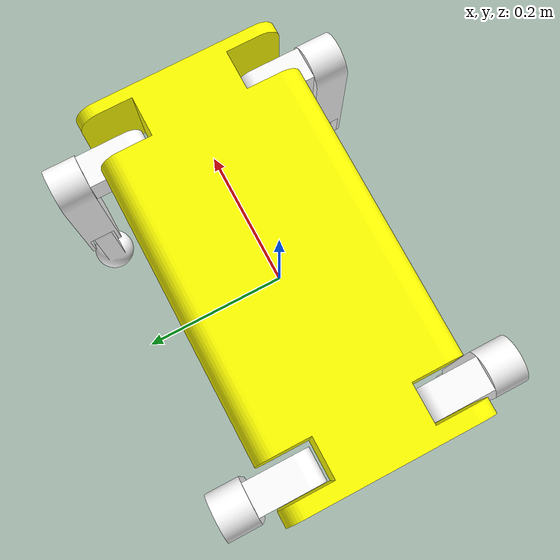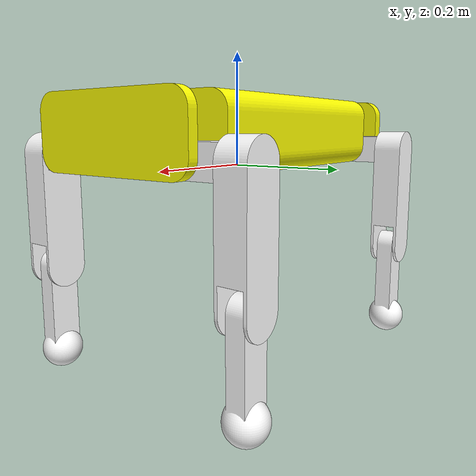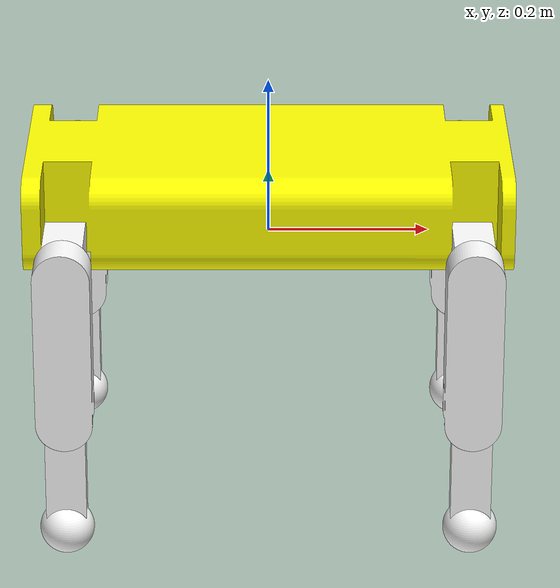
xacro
<?xml version="1.0" ?>
<robot name="simple_quad" xmlns:xacro="http://www.ros.org/wiki/xacro">
  <!-- include xacro files -->
  <xacro:include filename="$(find simple_quad_description)/urdf/simple_quad.ros2_control.xacro"/>
  <xacro:include filename="$(find simple_quad_description)/urdf/body/body.urdf.xacro"/>
  <xacro:include filename="$(find simple_quad_description)/urdf/leg/hip.urdf.xacro"/>
  <xacro:include filename="$(find simple_quad_description)/urdf/leg/upper_leg.urdf.xacro"/>
  <xacro:include filename="$(find simple_quad_description)/urdf/leg/lower_leg.urdf.xacro"/>
  <!-- xacro:include filename="$(find simple_quad_description)/urdf/sensors/lidar.urdf.xacro"/ -->

  <!-- arg -->
  <xacro:arg name="use_ignition" default="true"/>

  <!-- property -->
  <xacro:property name="use_ignition" value="$(arg use_ignition)"/>
  <xacro:property name="body_mass" value="148.6"/>
  <xacro:property name="hip_mass" value="1.857211"/>
  <xacro:property name="hip_shift_x" value="0.25"/>
  <xacro:property name="hip_shift_y" value="0.1"/>
  <xacro:property name="hip_shift_z" value="0.025"/>
  <xacro:property name="upper_leg_mass" value="2.895276"/>
  <xacro:property name="upper_leg_shift_y" value="0.1"/>
  <xacro:property name="lower_leg_mass" value="2.0"/>
  <xacro:property name="lower_leg_shift_z" value="-0.19"/>
  <xacro:property name="lidar_radius" value="0.04"/>
  <xacro:property name="lidar_length" value="0.04"/>
  <xacro:property name="lidar_mass" value="0.01"/>
  <xacro:property name="lidar_shift_x" value="0"/>
  <xacro:property name="lidar_shift_y" value="0"/>
  <xacro:property name="lidar_shift_z" value="0.14"/>

  <!-- ======== Body Description ======== -->
  <xacro:body name="base_link" mass="${body_mass}"/>

  <!-- ======== Leg Description ======== -->
  <xacro:hip name="lf" parent="base_link" mass="${hip_mass}" side="1" use_ignition="${use_ignition}">
    <origin xyz="${hip_shift_x} ${hip_shift_y} ${hip_shift_z}" rpy="0 0 0" use_ignition="${use_ignition}"/>
  </xacro:hip>
  <xacro:hip name="rf" parent="base_link" mass="${hip_mass}" side="-1" use_ignition="${use_ignition}">
    <origin xyz="${hip_shift_x} ${-hip_shift_y} ${hip_shift_z}" rpy="0 0 0"/>
  </xacro:hip>
  <xacro:hip name="lb" parent="base_link" mass="${hip_mass}" side="1" use_ignition="${use_ignition}">
    <origin xyz="${-hip_shift_x} ${hip_shift_y} ${hip_shift_z}" rpy="0 0 0"/>
  </xacro:hip>
  <xacro:hip name="rb" parent="base_link" mass="${hip_mass}" side="-1" use_ignition="${use_ignition}">
    <origin xyz="${-hip_shift_x} ${-hip_shift_y} ${hip_shift_z}" rpy="0 0 0"/>
  </xacro:hip>

  <xacro:upper_leg name="lf" mass="${upper_leg_mass}" use_ignition="${use_ignition}">
    <origin xyz="0 ${upper_leg_shift_y} 0" rpy="0 0 0"/>
  </xacro:upper_leg>
  <xacro:upper_leg name="rf" mass="${upper_leg_mass}" use_ignition="${use_ignition}">
    <origin xyz="0 ${-upper_leg_shift_y} 0" rpy="0 0 0"/>
  </xacro:upper_leg>
  <xacro:upper_leg name="lb" mass="${upper_leg_mass}" use_ignition="${use_ignition}">
    <origin xyz="0 ${upper_leg_shift_y} 0" rpy="0 0 0"/>
  </xacro:upper_leg>
  <xacro:upper_leg name="rb" mass="${upper_leg_mass}" use_ignition="${use_ignition}">
    <origin xyz="0 ${-upper_leg_shift_y} 0" rpy="0 0 0"/>
  </xacro:upper_leg>

  <xacro:lower_leg name="lf" mass="${lower_leg_mass}" use_ignition="${use_ignition}">
    <origin xyz="0 0 ${lower_leg_shift_z}" rpy="0 0 0"/>
  </xacro:lower_leg>
  <xacro:lower_leg name="rf" mass="${lower_leg_mass}" use_ignition="${use_ignition}">
    <origin xyz="0 0 ${lower_leg_shift_z}" rpy="0 0 0"/>
  </xacro:lower_leg>
  <xacro:lower_leg name="lb" mass="${lower_leg_mass}" use_ignition="${use_ignition}">
    <origin xyz="0 0 ${lower_leg_shift_z}" rpy="0 0 0"/>
  </xacro:lower_leg>
  <xacro:lower_leg name="rb" mass="${lower_leg_mass}" use_ignition="${use_ignition}">
    <origin xyz="0 0 ${lower_leg_shift_z}" rpy="0 0 0"/>
  </xacro:lower_leg>

  <!-- ======== Sensors Description ======== -->

  <!-- ======== ros2_control ======== -->
  <xacro:simple_quad_ros2_control use_ignition="${use_ignition}"/>
</robot>

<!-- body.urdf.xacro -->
<robot name="body" xmlns:xacro="http://www.ros.org/wiki/xacro">

  <xacro:macro name="body" params="name mass">

    <link name="${name}">
      <inertial>
        <origin xyz="0 0 0" rpy="0 0 0"/>
        <mass value="${mass}" />
        <inertia ixx="1.692"    ixy="0"     ixz="0.003286"
                 iyx="0"        iyy="4.596" iyz="0"
                 izx="0.003286" izy="0"     izz="4.871"/>
      </inertial>
      <visual>
        <origin xyz="0 0 0" rpy="0 0 0"/>
        <geometry>
          <mesh filename="file://$(find simple_quad_description)/meshes/body.stl" scale="0.001 0.001 0.001"/>
        </geometry>
        <material name="body_color">
          <color rgba="1.0 1.0 0.0 1.0"/>
        </material>
      </visual>
      <collision>
        <origin xyz="0 0 0" rpy="0 0 0"/>
        <geometry>
          <mesh filename="file://$(find simple_quad_description)/meshes/body.stl" scale="0.001 0.001 0.001"/>
        </geometry>
      </collision>
    </link>

    <gazebo reference="${name}">
      <material>Gazebo/Yellow</material>
    </gazebo>
  </xacro:macro>
</robot>

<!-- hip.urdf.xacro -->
<robot name="hip" xmlns:xacro="http://www.ros.org/wiki/xacro">
  <xacro:include filename="$(find simple_quad_description)/urdf/leg/hip.gazebo.xacro" />
  <xacro:include filename="$(find simple_quad_description)/urdf/leg/hip.ros2_control.xacro" />

  <xacro:macro name="hip_mesh">
    <xacro:if value="${side==1}">
      <mesh filename="file://$(find simple_quad_description)/meshes/left_hip.stl" scale="0.001 0.001 0.001"/>
    </xacro:if>
    <xacro:if value="${side==-1}">
      <mesh filename="file://$(find simple_quad_description)/meshes/right_hip.stl" scale="0.001 0.001 0.001"/>
    </xacro:if>
  </xacro:macro>

  <xacro:macro name="hip" params="name parent mass side *origin use_ignition">
    <material name="${name}_hip_color">
      <color rgba="1.0 1.0 1.0 1.0"/>
    </material>

    <link name="${name}_hip">
      <inertial>
        <origin xyz="0 0 0" rpy="0 0 0"/>
        <mass value="${mass}" />
        <inertia ixx="0.003187" ixy="0" ixz="0"
                 iyx="0" iyy="0.0007538" iyz="0"
                 izx="0" izy="0" izz="0.003207"/>
      </inertial>
      <visual>
        <origin xyz="0 0 0" rpy="0 0 0"/>
        <geometry>
          <xacro:hip_mesh/>
        </geometry>
        <material name="${name}_hip_color"/>
      </visual>
      <collision>
        <origin xyz="0 0 0" rpy="0 0 0"/>
        <geometry>
          <xacro:hip_mesh/>
        </geometry>
      </collision>
    </link>

    <joint name="${name}_body_to_hip_joint" type="revolute">
      <limit effort="25" lower="${-pi/2}" upper="${pi/2}" velocity="1.5"/>
      <xacro:insert_block name="origin"/>
      <parent link="${parent}"/>
      <child link="${name}_hip"/>
      <axis xyz="1.0 0.0 0.0"/>
    </joint>

    <!-- Gazebo Plugin -->
    <xacro:hip_gazebo name="${name}"/>

    <!-- ros2_control Plugin -->
    <xacro:hip_ros2_control name="${name}" use_ignition="${use_ignition}"/>
  </xacro:macro>
</robot>

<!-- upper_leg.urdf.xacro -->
<robot name="upper_leg" xmlns:xacro="http://www.ros.org/wiki/xacro">
  <xacro:include filename="$(find simple_quad_description)/urdf/leg/upper_leg.gazebo.xacro" />
  <xacro:include filename="$(find simple_quad_description)/urdf/leg/upper_leg.ros2_control.xacro" />

  <xacro:macro name="upper_leg" params="name mass *origin use_ignition">
    <material name="${name}_upper_leg_color">
      <color rgba="1.0 1.0 1.0 1.0"/>
    </material>

    <link name="${name}_upper_leg">
      <inertial>
        <origin xyz="0 0 0" rpy="0 0 0"/>
        <mass value="${mass}" />
        <inertia ixx="0.04508" ixy="0" ixz="0"
                 iyx="0" iyy="0.04592" iyz="0"
                 izx="0" izy="0" izz="0.003255"/>
      </inertial>
      <visual>
        <origin xyz="0 0 0" rpy="0 0 0"/>
        <geometry>
          <mesh filename="file://$(find simple_quad_description)/meshes/upper_leg.stl" scale="0.001 0.001 0.001"/>
        </geometry>
        <material name="${name}_upper_leg_color"/>
      </visual>
      <collision>
        <origin xyz="0 0 0" rpy="0 0 0"/>
        <geometry>
          <mesh filename="file://$(find simple_quad_description)/meshes/upper_leg.stl" scale="0.001 0.001 0.001"/>
        </geometry>
      </collision>
    </link>

    <joint name="${name}_hip_to_upper_leg_joint" type="revolute">
      <limit effort="25" lower="${-pi/2}" upper="${pi/2}" velocity="1.5"/>
      <xacro:insert_block name="origin"/>
      <parent link="${name}_hip"/>
      <child link="${name}_upper_leg"/>
      <axis xyz="0.0 1.0 0.0"/>
    </joint>

    <!-- Gazebo Plugin -->
    <xacro:upper_leg_gazebo name="${name}"/>

    <!-- ros2_control Plugin -->
    <xacro:upper_leg_ros2_control name="${name}" use_ignition="${use_ignition}"/>
  </xacro:macro>
</robot>

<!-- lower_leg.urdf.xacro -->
<robot name="lower_leg" xmlns:xacro="http://www.ros.org/wiki/xacro">
  <xacro:include filename="$(find simple_quad_description)/urdf/leg/lower_leg.gazebo.xacro" />
  <xacro:include filename="$(find simple_quad_description)/urdf/leg/lower_leg.ros2_control.xacro" />

  <xacro:macro name="lower_leg" params="name mass *origin use_ignition">
    <material name="${name}_lower_leg_color">
      <color rgba="1.0 1.0 1.0 1.0"/>
    </material>

    <link name="${name}_lower_leg">
      <inertial>
        <origin xyz="0 0 0" rpy="0 0 0"/>
        <mass value="${mass}" />
        <inertia ixx="0.03555" ixy="0" ixz="0"
                 iyx="0" iyy="0.03576" iyz="0"
                 izx="0" izy="0" izz="0.001021"/>
      </inertial>
      <visual>
        <origin xyz="0 0 0" rpy="0 0 0"/>
        <geometry>
          <mesh filename="file://$(find simple_quad_description)/meshes/lower_leg.stl" scale="0.001 0.001 0.001"/>
        </geometry>
        <material name="${name}_lower_leg_color"/>
      </visual>
      <collision>
        <origin xyz="0 0 0" rpy="0 0 0"/>
        <geometry>
          <mesh filename="file://$(find simple_quad_description)/meshes/lower_leg.stl" scale="0.001 0.001 0.001"/>
        </geometry>
      </collision>
    </link>

    <joint name="${name}_upper_leg_to_lower_leg_joint" type="revolute">
      <limit effort="25" lower="${-pi}" upper="${0.0}" velocity="1.5"/>
      <xacro:insert_block name="origin"/>
      <parent link="${name}_upper_leg"/>
      <child link="${name}_lower_leg"/>
      <axis xyz="0.0 1.0 0.0"/>
    </joint>

    <!-- Gazebo Plugin -->
    <xacro:lower_leg_gazebo name="${name}"/>

    <!-- ros2_control Plugin -->
    <xacro:lower_leg_ros2_control name="${name}" use_ignition="${use_ignition}"/>
  </xacro:macro>
</robot>
